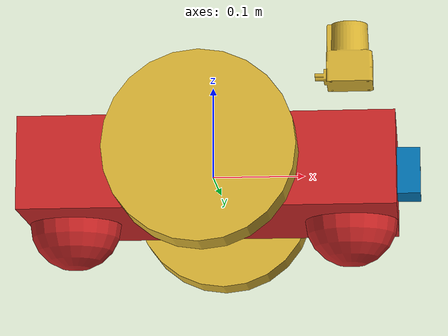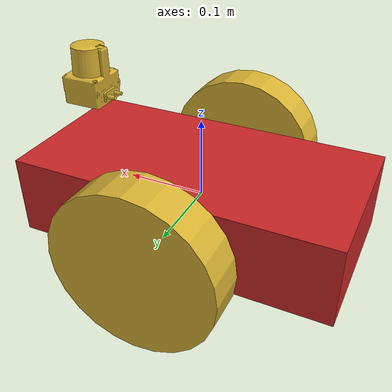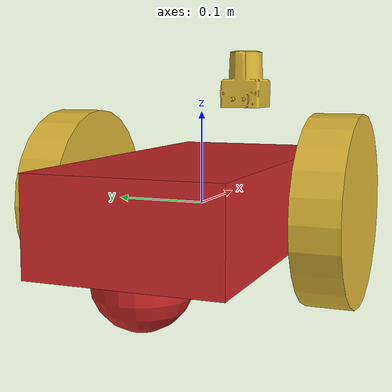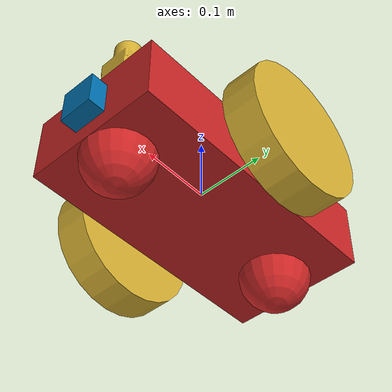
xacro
<?xml version='1.0'?>

<robot name="my_robot" xmlns:xacro="http://www.ros.org/wiki/xacro">

  <xacro:include filename="$(find delirobot_description)/urdf/my_robot.gazebo" />

  <link name="base_link"></link>

  <joint name="base_link_joint" type="fixed">
    <origin xyz="0 0 0" rpy="0 0 0" />
    <parent link="base_link"/>
    <child link="chassis" />
  </joint>

  <link name='chassis'>
    <pose>0 0 0.1 0 0 0</pose>

    <inertial>
      <mass value="15.0"/>
      <origin xyz="0.0 0 0" rpy=" 0 0 0"/>
      <inertia
          ixx="0.1" ixy="0" ixz="0"
          iyy="0.1" iyz="0"
          izz="0.1"
      />
    </inertial>

    <collision name='collision'>
      <origin xyz="0 0 0" rpy=" 0 0 0"/>
      <geometry>
        <box size=".4 .2 .1"/>
      </geometry>
    </collision>

    <visual name='chassis_visual'>
      <origin xyz="0 0 0" rpy=" 0 0 0"/>
      <geometry>
        <box size=".4 .2 .1"/>
      </geometry>
    </visual>

    <collision name='back_caster_collision'>
      <origin xyz="-0.15 0 -0.05" rpy=" 0 0 0"/>
      <geometry>
        <sphere radius="0.0499"/>
      </geometry>
    </collision>

    <visual name='back_caster_visual'>
      <origin xyz="-0.15 0 -0.05" rpy=" 0 0 0"/>
      <geometry>
        <sphere radius="0.05"/>
      </geometry>
    </visual>

    <collision name='front_caster_collision'>
      <origin xyz="0.15 0 -0.05" rpy=" 0 0 0"/>
      <geometry>
        <sphere radius="0.0499"/>
      </geometry>
    </collision>

    <visual name='front_caster_visual'>
      <origin xyz="0.15 0 -0.05" rpy=" 0 0 0"/>
      <geometry>
        <sphere radius="0.05"/>
      </geometry>
    </visual>
  </link>

  <link name='left_wheel'>
    <collision>
      <origin xyz="0 0 0" rpy="0 1.5707 1.5707"/>
      <geometry>
        <cylinder radius="0.1" length="0.05"/>
      </geometry>
    </collision>
    <visual>
      <origin xyz="0 0 0" rpy="0 1.5707 1.5707"/>
      <geometry>
        <cylinder radius="0.1" length="0.05"/>
      </geometry>
    </visual>
    <inertial>
      <mass value="5"/>
      <origin xyz="0 0 0" rpy="0 1.5707 1.5707"/>
      <inertia
          ixx="0.1" ixy="0" ixz="0"
          iyy="0.1" iyz="0"
          izz="0.1"
      />
    </inertial>
  </link>

  <link name='right_wheel'>
    <collision>
      <origin xyz="0 0 0" rpy="0 1.5707 1.5707"/>
      <geometry>
        <cylinder radius="0.1" length="0.05"/>
      </geometry>
    </collision>
    <visual>
      <origin xyz="0 0 0" rpy="0 1.5707 1.5707"/>
      <geometry>
        <cylinder radius="0.1" length="0.05"/>
      </geometry>
    </visual>
    <inertial>
      <mass value="5"/>
      <origin xyz="0 0 0" rpy="0 1.5707 1.5707"/>
      <inertia
          ixx="0.1" ixy="0" ixz="0"
          iyy="0.1" iyz="0"
          izz="0.1"
      />
    </inertial>
  </link>

  <joint type="continuous" name="left_wheel_hinge">
    <origin xyz="0 0.15 0" rpy="0 0 0"/>
    <child link="left_wheel"/>
    <parent link="chassis"/>
    <axis xyz="0 1 0" rpy="0 0 0"/>
    <limit effort="10000" velocity="1000"/>
    <dynamics damping="1.0" friction="1.0"/>
  </joint>

  <joint type="continuous" name="right_wheel_hinge">
    <origin xyz="0 -0.15 0" rpy="0 0 0"/>
    <child link="right_wheel"/>
    <parent link="chassis"/>
    <axis xyz="0 1 0" rpy="0 0 0"/>
    <limit effort="10000" velocity="1000"/>
    <dynamics damping="1.0" friction="1.0"/>
  </joint>

  <link name='camera'>
    <collision>
      <origin xyz="0 0 0" rpy="0 0 0"/>
      <geometry>
        <box size="0.05 0.05 0.05"/>
      </geometry>
    </collision>
    <visual>
      <origin xyz="0 0 0" rpy="0 0 0"/>
      <geometry>
        <box size="0.05 0.05 0.05"/>
      </geometry>
    </visual>
    <inertial>
      <mass value="0.1"/>
      <origin xyz="0 0 0" rpy="0 0 0"/>
      <inertia
          ixx="1e-6" ixy="0" ixz="0"
          iyy="1e-6" iyz="0" izz="1e-6"
      />
    </inertial>
  </link>

  <joint name="camera_joint" type="fixed" >
    <axis xyz="0 1 0"/>
    <origin xyz="0.2 0 0" rpy="0 0 0"/>
    <parent link="chassis"/>
    <child link="camera"/>
  </joint>

  <joint name="camera_optical_joint" type="fixed">
    <origin xyz="0 0 0" rpy="-1.5707 0 -1.5707"/>
    <parent link="camera"/>
    <child link="camera_link_optical"/>
  </joint>

  <link name="camera_link_optical">
  </link>

  <link name='hokuyo'>
    <collision>
      <origin xyz="0 0 0" rpy="0 0 0"/>
      <geometry>
        <box size="0.1 0.1 0.1"/>
      </geometry>
    </collision>
    <visual>
      <origin xyz="0 0 0" rpy="0 0 0"/>
      <geometry>
        <mesh filename="package://delirobot_description/meshes/lidar.STL"/>
      </geometry>
    </visual>
    <inertial>
      <mass value="1e-5"/>
      <origin xyz="0 0 0" rpy="0 0 0"/>
      <inertia
          ixx="1e-6" ixy="0" ixz="0"
          iyy="1e-6" iyz="0" izz="1e-6"
      />
    </inertial>
  </link>

  <joint type="fixed" name="hokuyo_joint">
    <origin xyz="0.15 0 0.1" rpy="0 0 0"/>
    <child link="hokuyo"/>
    <parent link="chassis"/>
    <axis xyz="0 1 0"/>
  </joint>

  <gazebo reference="left_wheel">
    <material>Gazebo/Gold</material>
  </gazebo>
  <gazebo reference="right_wheel">
    <material>Gazebo/Gold</material>
  </gazebo>
  <gazebo reference="chassis">
    <material>Gazebo/Red</material>
  </gazebo>
  <gazebo reference="hokuyo">
    <material>Gazebo/Gold</material>
  </gazebo>

</robot>
